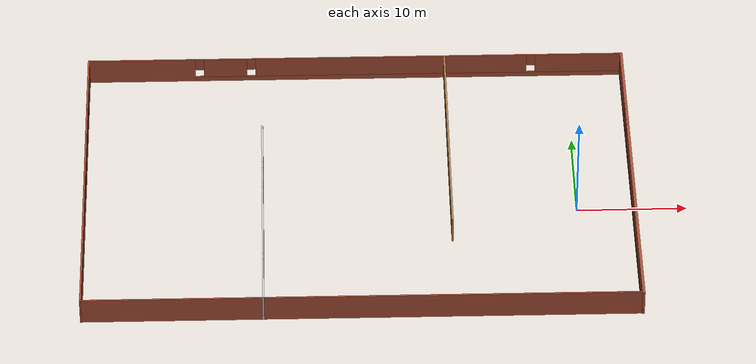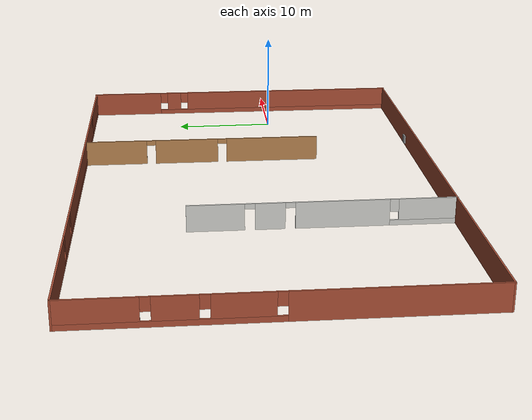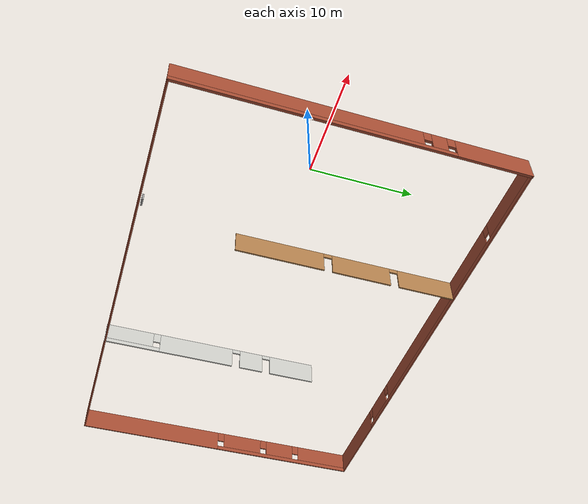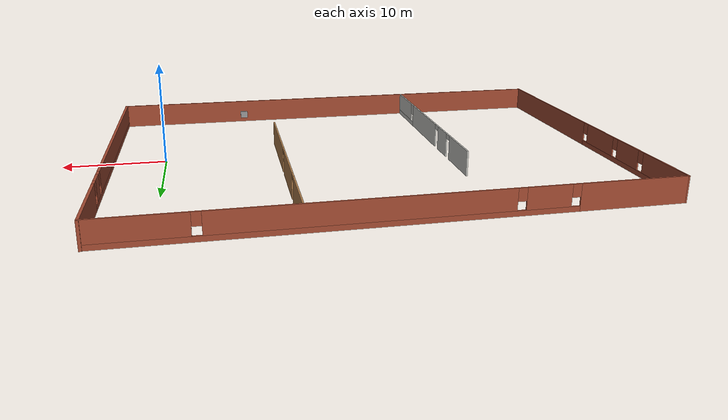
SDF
<?xml version='1.0'?>
<sdf version='1.6'>
  <model name='building_2'>
    <pose frame=''>-19.7992 2.75157 0 0 -0 0</pose>
    <link name='Wall_0'>
      <pose frame=''>-24.9808 0.000427 0 0 -0 1.5708</pose>
      <visual name='Wall_0_Visual_0'>
        <pose frame=''>-8.65096 0 1.25 0 -0 0</pose>
        <geometry>
          <box>
            <size>16.9481 0.15 2.5</size>
          </box>
        </geometry>
        <material>
          <script>
            <uri>file://media/materials/scripts/gazebo.material</uri>
            <name>Gazebo/Bricks</name>
          </script>
          <ambient>1 1 1 1</ambient>
        </material>
      </visual>
      <collision name='Wall_0_Collision_0'>
        <geometry>
          <box>
            <size>16.9481 0.15 2.5</size>
          </box>
        </geometry>
        <pose frame=''>-8.65096 0 1.25 0 -0 0</pose>
      </collision>
      <visual name='Wall_0_Visual_1'>
        <pose frame=''>8.47404 0 0.25 0 -0 0</pose>
        <geometry>
          <box>
            <size>17.3019 0.15 0.5</size>
          </box>
        </geometry>
        <material>
          <script>
            <uri>file://media/materials/scripts/gazebo.material</uri>
            <name>Gazebo/Bricks</name>
          </script>
          <ambient>1 1 1 1</ambient>
        </material>
      </visual>
      <collision name='Wall_0_Collision_1'>
        <geometry>
          <box>
            <size>17.3019 0.15 0.5</size>
          </box>
        </geometry>
        <pose frame=''>8.47404 0 0.25 0 -0 0</pose>
      </collision>
      <visual name='Wall_0_Visual_2'>
        <pose frame=''>3.06943 0 1.5 0 -0 0</pose>
        <geometry>
          <box>
            <size>4.89271 0.15 2</size>
          </box>
        </geometry>
        <material>
          <script>
            <uri>file://media/materials/scripts/gazebo.material</uri>
            <name>Gazebo/Bricks</name>
          </script>
          <ambient>1 1 1 1</ambient>
        </material>
      </visual>
      <collision name='Wall_0_Collision_2'>
        <geometry>
          <box>
            <size>4.89271 0.15 2</size>
          </box>
        </geometry>
        <pose frame=''>3.06943 0 1.5 0 -0 0</pose>
      </collision>
      <visual name='Wall_0_Visual_3'>
        <pose frame=''>8.08149 0 1.5 0 -0 0</pose>
        <geometry>
          <box>
            <size>3.53141 0.15 2</size>
          </box>
        </geometry>
        <material>
          <script>
            <uri>file://media/materials/scripts/gazebo.material</uri>
            <name>Gazebo/Bricks</name>
          </script>
          <ambient>1 1 1 1</ambient>
        </material>
      </visual>
      <collision name='Wall_0_Collision_3'>
        <geometry>
          <box>
            <size>3.53141 0.15 2</size>
          </box>
        </geometry>
        <pose frame=''>8.08149 0 1.5 0 -0 0</pose>
      </collision>
      <visual name='Wall_0_Visual_4'>
        <pose frame=''>13.8861 0 1.5 0 -0 0</pose>
        <geometry>
          <box>
            <size>6.47781 0.15 2</size>
          </box>
        </geometry>
        <material>
          <script>
            <uri>file://media/materials/scripts/gazebo.material</uri>
            <name>Gazebo/Bricks</name>
          </script>
          <ambient>1 1 1 1</ambient>
        </material>
      </visual>
      <collision name='Wall_0_Collision_4'>
        <geometry>
          <box>
            <size>6.47781 0.15 2</size>
          </box>
        </geometry>
        <pose frame=''>13.8861 0 1.5 0 -0 0</pose>
      </collision>
      <visual name='Wall_0_Visual_5'>
        <pose frame=''>0.223075 0 1.9 0 -0 0</pose>
        <geometry>
          <box>
            <size>0.8 0.15 1.2</size>
          </box>
        </geometry>
        <material>
          <script>
            <uri>file://media/materials/scripts/gazebo.material</uri>
            <name>Gazebo/Bricks</name>
          </script>
          <ambient>1 1 1 1</ambient>
        </material>
      </visual>
      <collision name='Wall_0_Collision_5'>
        <geometry>
          <box>
            <size>0.8 0.15 1.2</size>
          </box>
        </geometry>
        <pose frame=''>0.223075 0 1.9 0 -0 0</pose>
      </collision>
      <visual name='Wall_0_Visual_6'>
        <pose frame=''>5.91578 0 1.9 0 -0 0</pose>
        <geometry>
          <box>
            <size>0.8 0.15 1.2</size>
          </box>
        </geometry>
        <material>
          <script>
            <uri>file://media/materials/scripts/gazebo.material</uri>
            <name>Gazebo/Bricks</name>
          </script>
          <ambient>1 1 1 1</ambient>
        </material>
      </visual>
      <collision name='Wall_0_Collision_6'>
        <geometry>
          <box>
            <size>0.8 0.15 1.2</size>
          </box>
        </geometry>
        <pose frame=''>5.91578 0 1.9 0 -0 0</pose>
      </collision>
      <visual name='Wall_0_Visual_7'>
        <pose frame=''>10.2472 0 1.9 0 -0 0</pose>
        <geometry>
          <box>
            <size>0.8 0.15 1.2</size>
          </box>
        </geometry>
        <material>
          <script>
            <uri>file://media/materials/scripts/gazebo.material</uri>
            <name>Gazebo/Bricks</name>
          </script>
          <ambient>1 1 1 1</ambient>
        </material>
      </visual>
      <collision name='Wall_0_Collision_7'>
        <geometry>
          <box>
            <size>0.8 0.15 1.2</size>
          </box>
        </geometry>
        <pose frame=''>10.2472 0 1.9 0 -0 0</pose>
      </collision>
    </link>
    <link name='Wall_1'>
      <pose frame=''>-0.02484 17.0504 0 0 -0 0</pose>
      <visual name='Wall_1_Visual_0'>
        <pose frame=''>-20.0058 0 1.25 0 -0 0</pose>
        <geometry>
          <box>
            <size>10.0505 0.15 2.5</size>
          </box>
        </geometry>
        <material>
          <script>
            <uri>file://media/materials/scripts/gazebo.material</uri>
            <name>Gazebo/Bricks</name>
          </script>
          <ambient>1 1 1 1</ambient>
        </material>
      </visual>
      <collision name='Wall_1_Collision_0'>
        <geometry>
          <box>
            <size>10.0505 0.15 2.5</size>
          </box>
        </geometry>
        <pose frame=''>-20.0058 0 1.25 0 -0 0</pose>
      </collision>
      <visual name='Wall_1_Visual_1'>
        <pose frame=''>5.02523 0 0.25 0 -0 0</pose>
        <geometry>
          <box>
            <size>40.0115 0.15 0.5</size>
          </box>
        </geometry>
        <material>
          <script>
            <uri>file://media/materials/scripts/gazebo.material</uri>
            <name>Gazebo/Bricks</name>
          </script>
          <ambient>1 1 1 1</ambient>
        </material>
      </visual>
      <collision name='Wall_1_Collision_1'>
        <geometry>
          <box>
            <size>40.0115 0.15 0.5</size>
          </box>
        </geometry>
        <pose frame=''>5.02523 0 0.25 0 -0 0</pose>
      </collision>
      <visual name='Wall_1_Visual_2'>
        <pose frame=''>-12.1673 0 1.5 0 -0 0</pose>
        <geometry>
          <box>
            <size>4.02643 0.15 2</size>
          </box>
        </geometry>
        <material>
          <script>
            <uri>file://media/materials/scripts/gazebo.material</uri>
            <name>Gazebo/Bricks</name>
          </script>
          <ambient>1 1 1 1</ambient>
        </material>
      </visual>
      <collision name='Wall_1_Collision_2'>
        <geometry>
          <box>
            <size>4.02643 0.15 2</size>
          </box>
        </geometry>
        <pose frame=''>-12.1673 0 1.5 0 -0 0</pose>
      </collision>
      <visual name='Wall_1_Visual_3'>
        <pose frame=''>3.36386 0 1.5 0 -0 0</pose>
        <geometry>
          <box>
            <size>25.436 0.15 2</size>
          </box>
        </geometry>
        <material>
          <script>
            <uri>file://media/materials/scripts/gazebo.material</uri>
            <name>Gazebo/Bricks</name>
          </script>
          <ambient>1 1 1 1</ambient>
        </material>
      </visual>
      <collision name='Wall_1_Collision_3'>
        <geometry>
          <box>
            <size>25.436 0.15 2</size>
          </box>
        </geometry>
        <pose frame=''>3.36386 0 1.5 0 -0 0</pose>
      </collision>
      <visual name='Wall_1_Visual_4'>
        <pose frame=''>20.9564 0 1.5 0 -0 0</pose>
        <geometry>
          <box>
            <size>8.14916 0.15 2</size>
          </box>
        </geometry>
        <material>
          <script>
            <uri>file://media/materials/scripts/gazebo.material</uri>
            <name>Gazebo/Bricks</name>
          </script>
          <ambient>1 1 1 1</ambient>
        </material>
      </visual>
      <collision name='Wall_1_Collision_4'>
        <geometry>
          <box>
            <size>8.14916 0.15 2</size>
          </box>
        </geometry>
        <pose frame=''>20.9564 0 1.5 0 -0 0</pose>
      </collision>
      <visual name='Wall_1_Visual_5'>
        <pose frame=''>-14.5805 0 1.9 0 -0 0</pose>
        <geometry>
          <box>
            <size>0.8 0.15 1.2</size>
          </box>
        </geometry>
        <material>
          <script>
            <uri>file://media/materials/scripts/gazebo.material</uri>
            <name>Gazebo/Bricks</name>
          </script>
          <ambient>1 1 1 1</ambient>
        </material>
      </visual>
      <collision name='Wall_1_Collision_5'>
        <geometry>
          <box>
            <size>0.8 0.15 1.2</size>
          </box>
        </geometry>
        <pose frame=''>-14.5805 0 1.9 0 -0 0</pose>
      </collision>
      <visual name='Wall_1_Visual_6'>
        <pose frame=''>-9.75412 0 1.9 0 -0 0</pose>
        <geometry>
          <box>
            <size>0.8 0.15 1.2</size>
          </box>
        </geometry>
        <material>
          <script>
            <uri>file://media/materials/scripts/gazebo.material</uri>
            <name>Gazebo/Bricks</name>
          </script>
          <ambient>1 1 1 1</ambient>
        </material>
      </visual>
      <collision name='Wall_1_Collision_6'>
        <geometry>
          <box>
            <size>0.8 0.15 1.2</size>
          </box>
        </geometry>
        <pose frame=''>-9.75412 0 1.9 0 -0 0</pose>
      </collision>
      <visual name='Wall_1_Visual_7'>
        <pose frame=''>16.4818 0 1.9 0 -0 0</pose>
        <geometry>
          <box>
            <size>0.8 0.15 1.2</size>
          </box>
        </geometry>
        <material>
          <script>
            <uri>file://media/materials/scripts/gazebo.material</uri>
            <name>Gazebo/Bricks</name>
          </script>
          <ambient>1 1 1 1</ambient>
        </material>
      </visual>
      <collision name='Wall_1_Collision_7'>
        <geometry>
          <box>
            <size>0.8 0.15 1.2</size>
          </box>
        </geometry>
        <pose frame=''>16.4818 0 1.9 0 -0 0</pose>
      </collision>
    </link>
    <link name='Wall_2'>
      <pose frame=''>24.9312 0.000427 0 0 0 -1.5708</pose>
      <visual name='Wall_2_Visual_0'>
        <pose frame=''>-13.3542 0 1.25 0 -0 0</pose>
        <geometry>
          <box>
            <size>7.6416 0.25 2.5</size>
          </box>
        </geometry>
        <material>
          <script>
            <uri>file://media/materials/scripts/gazebo.material</uri>
            <name>Gazebo/Bricks</name>
          </script>
          <ambient>1 1 1 1</ambient>
        </material>
      </visual>
      <collision name='Wall_2_Collision_0'>
        <geometry>
          <box>
            <size>7.6416 0.25 2.5</size>
          </box>
        </geometry>
        <pose frame=''>-13.3542 0 1.25 0 -0 0</pose>
      </collision>
      <visual name='Wall_2_Visual_1'>
        <pose frame=''>3.8208 0 0.25 0 -0 0</pose>
        <geometry>
          <box>
            <size>26.7084 0.25 0.5</size>
          </box>
        </geometry>
        <material>
          <script>
            <uri>file://media/materials/scripts/gazebo.material</uri>
            <name>Gazebo/Bricks</name>
          </script>
          <ambient>1 1 1 1</ambient>
        </material>
      </visual>
      <collision name='Wall_2_Collision_1'>
        <geometry>
          <box>
            <size>26.7084 0.25 0.5</size>
          </box>
        </geometry>
        <pose frame=''>3.8208 0 0.25 0 -0 0</pose>
      </collision>
      <visual name='Wall_2_Visual_2'>
        <pose frame=''>-7.95773 0 1.5 0 -0 0</pose>
        <geometry>
          <box>
            <size>1.55134 0.25 2</size>
          </box>
        </geometry>
        <material>
          <script>
            <uri>file://media/materials/scripts/gazebo.material</uri>
            <name>Gazebo/Bricks</name>
          </script>
          <ambient>1 1 1 1</ambient>
        </material>
      </visual>
      <collision name='Wall_2_Collision_2'>
        <geometry>
          <box>
            <size>1.55134 0.25 2</size>
          </box>
        </geometry>
        <pose frame=''>-7.95773 0 1.5 0 -0 0</pose>
      </collision>
      <visual name='Wall_2_Visual_3'>
        <pose frame=''>5.39647 0 1.5 0 -0 0</pose>
        <geometry>
          <box>
            <size>23.5571 0.25 2</size>
          </box>
        </geometry>
        <material>
          <script>
            <uri>file://media/materials/scripts/gazebo.material</uri>
            <name>Gazebo/Bricks</name>
          </script>
          <ambient>1 1 1 1</ambient>
        </material>
      </visual>
      <collision name='Wall_2_Collision_3'>
        <geometry>
          <box>
            <size>23.5571 0.25 2</size>
          </box>
        </geometry>
        <pose frame=''>5.39647 0 1.5 0 -0 0</pose>
      </collision>
      <visual name='Wall_2_Visual_4'>
        <pose frame=''>-9.1334 0 1.9 0 -0 0</pose>
        <geometry>
          <box>
            <size>0.8 0.25 1.2</size>
          </box>
        </geometry>
        <material>
          <script>
            <uri>file://media/materials/scripts/gazebo.material</uri>
            <name>Gazebo/Bricks</name>
          </script>
          <ambient>1 1 1 1</ambient>
        </material>
      </visual>
      <collision name='Wall_2_Collision_4'>
        <geometry>
          <box>
            <size>0.8 0.25 1.2</size>
          </box>
        </geometry>
        <pose frame=''>-9.1334 0 1.9 0 -0 0</pose>
      </collision>
      <visual name='Wall_2_Visual_5'>
        <pose frame=''>-6.78207 0 1.9 0 -0 0</pose>
        <geometry>
          <box>
            <size>0.8 0.25 1.2</size>
          </box>
        </geometry>
        <material>
          <script>
            <uri>file://media/materials/scripts/gazebo.material</uri>
            <name>Gazebo/Bricks</name>
          </script>
          <ambient>1 1 1 1</ambient>
        </material>
      </visual>
      <collision name='Wall_2_Collision_5'>
        <geometry>
          <box>
            <size>0.8 0.25 1.2</size>
          </box>
        </geometry>
        <pose frame=''>-6.78207 0 1.9 0 -0 0</pose>
      </collision>
    </link>
    <link name='Wall_3'>
      <collision name='Wall_3_Collision'>
        <geometry>
          <box>
            <size>50.0626 0.15 2.5</size>
          </box>
        </geometry>
        <pose frame=''>0 0 1.25 0 -0 0</pose>
      </collision>
      <visual name='Wall_3_Visual'>
        <pose frame=''>0 0 1.25 0 -0 0</pose>
        <geometry>
          <box>
            <size>50.0626 0.15 2.5</size>
          </box>
        </geometry>
        <material>
          <script>
            <uri>file://media/materials/scripts/gazebo.material</uri>
            <name>Gazebo/Bricks</name>
          </script>
          <ambient>1 1 1 1</ambient>
        </material>
      </visual>
      <pose frame=''>-0.02484 -17.0496 0 0 -0 3.14159</pose>
    </link>
    <link name='Wall_5'>
      <pose frame=''>-8.79201 -5.05043 0 0 0 -1.5708</pose>
      <visual name='Wall_5_Visual_0'>
        <pose frame=''>-9.54324 0 1.25 0 -0 0</pose>
        <geometry>
          <box>
            <size>5.16353 0.15 2.5</size>
          </box>
        </geometry>
        <material>
          <script>
            <uri>file://media/materials/scripts/gazebo.material</uri>
            <name>Gazebo/CeilingTiled</name>
          </script>
          <ambient>1 1 1 1</ambient>
        </material>
      </visual>
      <collision name='Wall_5_Collision_0'>
        <geometry>
          <box>
            <size>5.16353 0.15 2.5</size>
          </box>
        </geometry>
        <pose frame=''>-9.54324 0 1.25 0 -0 0</pose>
      </collision>
      <visual name='Wall_5_Visual_1'>
        <pose frame=''>-4.71703 0 1.25 0 -0 0</pose>
        <geometry>
          <box>
            <size>2.68888 0.15 2.5</size>
          </box>
        </geometry>
        <material>
          <script>
            <uri>file://media/materials/scripts/gazebo.material</uri>
            <name>Gazebo/CeilingTiled</name>
          </script>
          <ambient>1 1 1 1</ambient>
        </material>
      </visual>
      <collision name='Wall_5_Collision_1'>
        <geometry>
          <box>
            <size>2.68888 0.15 2.5</size>
          </box>
        </geometry>
        <pose frame=''>-4.71703 0 1.25 0 -0 0</pose>
      </collision>
      <visual name='Wall_5_Visual_2'>
        <pose frame=''>1.7432 0 1.25 0 -0 0</pose>
        <geometry>
          <box>
            <size>8.43159 0.15 2.5</size>
          </box>
        </geometry>
        <material>
          <script>
            <uri>file://media/materials/scripts/gazebo.material</uri>
            <name>Gazebo/CeilingTiled</name>
          </script>
          <ambient>1 1 1 1</ambient>
        </material>
      </visual>
      <collision name='Wall_5_Collision_2'>
        <geometry>
          <box>
            <size>8.43159 0.15 2.5</size>
          </box>
        </geometry>
        <pose frame=''>1.7432 0 1.25 0 -0 0</pose>
      </collision>
      <visual name='Wall_5_Visual_3'>
        <pose frame=''>9.042 0 0.25 0 -0 0</pose>
        <geometry>
          <box>
            <size>6.166 0.15 0.5</size>
          </box>
        </geometry>
        <material>
          <script>
            <uri>file://media/materials/scripts/gazebo.material</uri>
            <name>Gazebo/CeilingTiled</name>
          </script>
          <ambient>1 1 1 1</ambient>
        </material>
      </visual>
      <collision name='Wall_5_Collision_3'>
        <geometry>
          <box>
            <size>6.166 0.15 0.5</size>
          </box>
        </geometry>
        <pose frame=''>9.042 0 0.25 0 -0 0</pose>
      </collision>
      <visual name='Wall_5_Visual_4'>
        <pose frame=''>9.442 0 1.5 0 -0 0</pose>
        <geometry>
          <box>
            <size>5.366 0.15 2</size>
          </box>
        </geometry>
        <material>
          <script>
            <uri>file://media/materials/scripts/gazebo.material</uri>
            <name>Gazebo/CeilingTiled</name>
          </script>
          <ambient>1 1 1 1</ambient>
        </material>
      </visual>
      <collision name='Wall_5_Collision_4'>
        <geometry>
          <box>
            <size>5.366 0.15 2</size>
          </box>
        </geometry>
        <pose frame=''>9.442 0 1.5 0 -0 0</pose>
      </collision>
      <visual name='Wall_5_Visual_5'>
        <pose frame=''>6.359 0 1.9 0 -0 0</pose>
        <geometry>
          <box>
            <size>0.8 0.15 1.2</size>
          </box>
        </geometry>
        <material>
          <script>
            <uri>file://media/materials/scripts/gazebo.material</uri>
            <name>Gazebo/CeilingTiled</name>
          </script>
          <ambient>1 1 1 1</ambient>
        </material>
      </visual>
      <collision name='Wall_5_Collision_5'>
        <geometry>
          <box>
            <size>0.8 0.15 1.2</size>
          </box>
        </geometry>
        <pose frame=''>6.359 0 1.9 0 -0 0</pose>
      </collision>
      <visual name='Wall_5_Visual_6'>
        <pose frame=''>-6.51147 0 2.25 0 -0 0</pose>
        <geometry>
          <box>
            <size>0.9 0.15 0.5</size>
          </box>
        </geometry>
        <material>
          <script>
            <uri>file://media/materials/scripts/gazebo.material</uri>
            <name>Gazebo/CeilingTiled</name>
          </script>
          <ambient>1 1 1 1</ambient>
        </material>
      </visual>
      <collision name='Wall_5_Collision_6'>
        <geometry>
          <box>
            <size>0.9 0.15 0.5</size>
          </box>
        </geometry>
        <pose frame=''>-6.51147 0 2.25 0 -0 0</pose>
      </collision>
      <visual name='Wall_5_Visual_7'>
        <pose frame=''>-2.92259 0 2.25 0 -0 0</pose>
        <geometry>
          <box>
            <size>0.9 0.15 0.5</size>
          </box>
        </geometry>
        <material>
          <script>
            <uri>file://media/materials/scripts/gazebo.material</uri>
            <name>Gazebo/CeilingTiled</name>
          </script>
          <ambient>1 1 1 1</ambient>
        </material>
      </visual>
      <collision name='Wall_5_Collision_7'>
        <geometry>
          <box>
            <size>0.9 0.15 0.5</size>
          </box>
        </geometry>
        <pose frame=''>-2.92259 0 2.25 0 -0 0</pose>
      </collision>
    </link>
    <link name='Wall_7'>
      <pose frame=''>8.33244 5.08792 0 0 0 -1.5708</pose>
      <visual name='Wall_7_Visual_0'>
        <pose frame=''>-8.80423 0 1.25 0 -0 0</pose>
        <geometry>
          <box>
            <size>6.14155 0.15 2.5</size>
          </box>
        </geometry>
        <material>
          <script>
            <uri>file://media/materials/scripts/gazebo.material</uri>
            <name>Gazebo/Wood</name>
          </script>
          <ambient>1 1 1 1</ambient>
        </material>
      </visual>
      <collision name='Wall_7_Collision_0'>
        <geometry>
          <box>
            <size>6.14155 0.15 2.5</size>
          </box>
        </geometry>
        <pose frame=''>-8.80423 0 1.25 0 -0 0</pose>
      </collision>
      <visual name='Wall_7_Visual_1'>
        <pose frame=''>-1.63269 0 1.25 0 -0 0</pose>
        <geometry>
          <box>
            <size>6.40152 0.15 2.5</size>
          </box>
        </geometry>
        <material>
          <script>
            <uri>file://media/materials/scripts/gazebo.material</uri>
            <name>Gazebo/Wood</name>
          </script>
          <ambient>1 1 1 1</ambient>
        </material>
      </visual>
      <collision name='Wall_7_Collision_1'>
        <geometry>
          <box>
            <size>6.40152 0.15 2.5</size>
          </box>
        </geometry>
        <pose frame=''>-1.63269 0 1.25 0 -0 0</pose>
      </collision>
      <visual name='Wall_7_Visual_2'>
        <pose frame=''>7.17153 0 1.25 0 -0 0</pose>
        <geometry>
          <box>
            <size>9.40693 0.15 2.5</size>
          </box>
        </geometry>
        <material>
          <script>
            <uri>file://media/materials/scripts/gazebo.material</uri>
            <name>Gazebo/Wood</name>
          </script>
          <ambient>1 1 1 1</ambient>
        </material>
      </visual>
      <collision name='Wall_7_Collision_2'>
        <geometry>
          <box>
            <size>9.40693 0.15 2.5</size>
          </box>
        </geometry>
        <pose frame=''>7.17153 0 1.25 0 -0 0</pose>
      </collision>
      <visual name='Wall_7_Visual_3'>
        <pose frame=''>-5.28345 0 2.25 0 -0 0</pose>
        <geometry>
          <box>
            <size>0.9 0.15 0.5</size>
          </box>
        </geometry>
        <material>
          <script>
            <uri>file://media/materials/scripts/gazebo.material</uri>
            <name>Gazebo/Wood</name>
          </script>
          <ambient>1 1 1 1</ambient>
        </material>
      </visual>
      <collision name='Wall_7_Collision_3'>
        <geometry>
          <box>
            <size>0.9 0.15 0.5</size>
          </box>
        </geometry>
        <pose frame=''>-5.28345 0 2.25 0 -0 0</pose>
      </collision>
      <visual name='Wall_7_Visual_4'>
        <pose frame=''>2.01807 0 2.25 0 -0 0</pose>
        <geometry>
          <box>
            <size>0.9 0.15 0.5</size>
          </box>
        </geometry>
        <material>
          <script>
            <uri>file://media/materials/scripts/gazebo.material</uri>
            <name>Gazebo/Wood</name>
          </script>
          <ambient>1 1 1 1</ambient>
        </material>
      </visual>
      <collision name='Wall_7_Collision_4'>
        <geometry>
          <box>
            <size>0.9 0.15 0.5</size>
          </box>
        </geometry>
        <pose frame=''>2.01807 0 2.25 0 -0 0</pose>
      </collision>
    </link>
    <link name='Window_5'>
      <collision name='Window_5_Collision'>
        <geometry>
          <box>
            <size>0.8 0.17 0.8</size>
          </box>
        </geometry>
        <pose frame=''>0 0 0.4 0 -0 0</pose>
      </collision>
      <visual name='Window_5_Visual'>
        <pose frame=''>0 0 0.4 0 -0 0</pose>
        <geometry>
          <box>
            <size>0.8 0.17 0.8</size>
          </box>
        </geometry>
        <material>
          <script>
            <uri>file://media/materials/scripts/gazebo.material</uri>
            <name>Gazebo/Grey</name>
          </script>
        </material>
      </visual>
      <pose frame=''>11.1356 -16.7309 0.5 0 -0 0</pose>
    </link>
    <static>1</static>
  </model>
</sdf>
